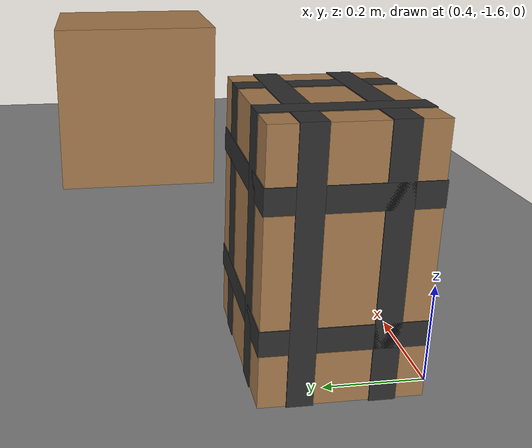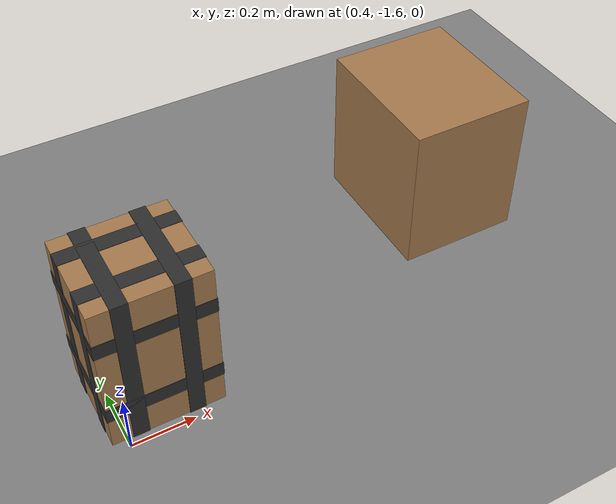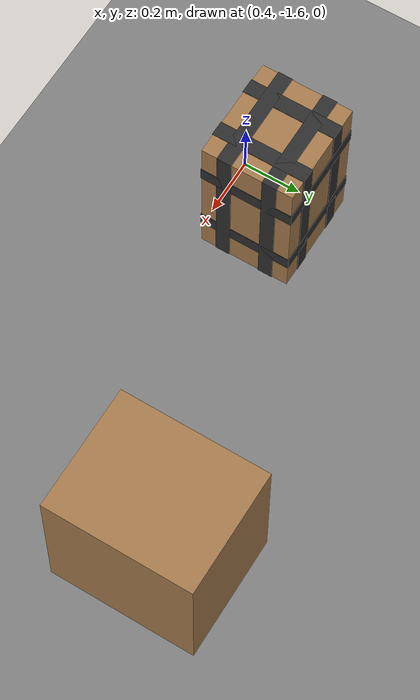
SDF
<sdf version="1.9">
 <world name="ecps295_lowbox_s1_monitor">
  <model name="ground_plane">
   <static>true</static>
   <link name="link">
    <collision name="collision">
     <geometry><plane><normal>0 0 1</normal><size>50 50</size></plane></geometry>
    </collision>
    <visual name="visual">
     <geometry><plane><normal>0 0 1</normal><size>50 50</size></plane></geometry>
     <material><ambient>0.5 0.5 0.5 1</ambient><diffuse>0.5 0.5 0.5 1</diffuse></material>
    </visual>
   </link>
  </model>
  <model name="lb1">
   <static>true</static>
   <pose>1.68 -1.12 0.257 0 0 0</pose>
   <link name="link">
    <collision name="c"><geometry><box><size>0.41 0.49 0.51</size></box></geometry></collision>
    <visual name="v">
     <geometry><box><size>0.41 0.49 0.51</size></box></geometry>
     <material><ambient>0.65 0.48 0.30 1</ambient><diffuse>0.65 0.48 0.30 1</diffuse></material>
    </visual>
   </link>
  </model>
  <model name="lb4">
   <static>true</static>
   <pose>0.53 -1.42 0.267 0 0 0</pose>
   <link name="link">
    <collision name="c"><geometry><box><size>0.35 0.31 0.53</size></box></geometry></collision>
    <visual name="v">
     <geometry><box><size>0.35 0.31 0.53</size></box></geometry>
     <material><ambient>0.65 0.48 0.30 1</ambient><diffuse>0.65 0.48 0.30 1</diffuse></material>
    </visual>
    <visual name="tape_ring0">
     <pose>0.000 0.000 -0.133 0 0 0</pose>
     <geometry><box><size>0.354 0.314 0.050</size></box></geometry>
     <material><ambient>0.18 0.18 0.18 1</ambient><diffuse>0.18 0.18 0.18 1</diffuse></material>
    </visual>
    <visual name="tape_bx0">
     <pose>-0.087 0.000 0.000 0 0 0</pose>
     <geometry><box><size>0.050 0.314 0.534</size></box></geometry>
     <material><ambient>0.18 0.18 0.18 1</ambient><diffuse>0.18 0.18 0.18 1</diffuse></material>
    </visual>
    <visual name="tape_by0">
     <pose>0.000 -0.077 0.000 0 0 0</pose>
     <geometry><box><size>0.354 0.050 0.534</size></box></geometry>
     <material><ambient>0.18 0.18 0.18 1</ambient><diffuse>0.18 0.18 0.18 1</diffuse></material>
    </visual>
    <visual name="tape_ring1">
     <pose>0.000 0.000 0.133 0 0 0</pose>
     <geometry><box><size>0.354 0.314 0.050</size></box></geometry>
     <material><ambient>0.18 0.18 0.18 1</ambient><diffuse>0.18 0.18 0.18 1</diffuse></material>
    </visual>
    <visual name="tape_bx1">
     <pose>0.087 0.000 0.000 0 0 0</pose>
     <geometry><box><size>0.050 0.314 0.534</size></box></geometry>
     <material><ambient>0.18 0.18 0.18 1</ambient><diffuse>0.18 0.18 0.18 1</diffuse></material>
    </visual>
    <visual name="tape_by1">
     <pose>0.000 0.077 0.000 0 0 0</pose>
     <geometry><box><size>0.354 0.050 0.534</size></box></geometry>
     <material><ambient>0.18 0.18 0.18 1</ambient><diffuse>0.18 0.18 0.18 1</diffuse></material>
    </visual>
   </link>
  </model>
 </world>
</sdf>
